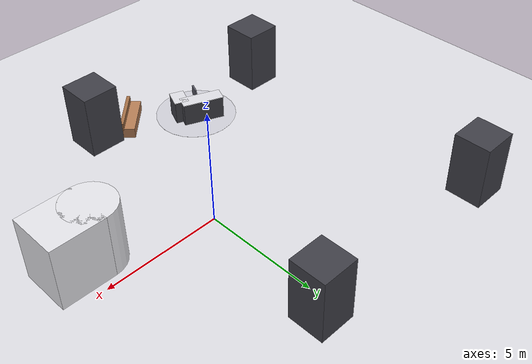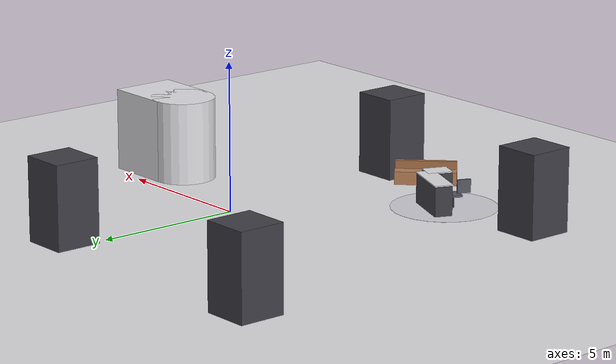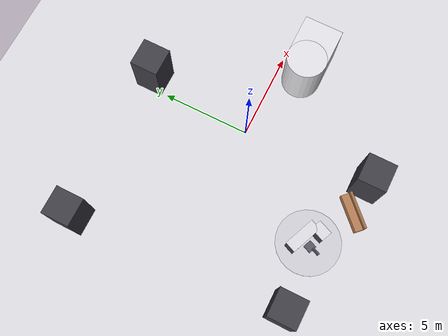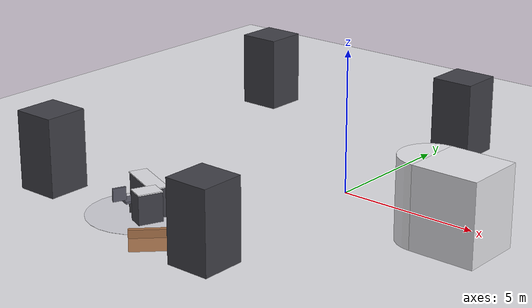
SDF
<sdf version="1.8">
 <world name="restaurant_blueprint_world">
  <model name="ground_plane">
   <static>true</static>
   <link name="link">
    <collision name="collision">
     <geometry><plane><normal>0 0 1</normal><size>120 120</size></plane></geometry>
    </collision>
    <visual name="visual">
     <geometry><plane><normal>0 0 1</normal><size>120 120</size></plane></geometry>
     <material>
      <ambient>0.88 0.88 0.90 1</ambient>
      <diffuse>0.88 0.88 0.90 1</diffuse>
      <specular>0.1 0.1 0.1 1</specular>
     </material>
    </visual>
   </link>
  </model>
  <model name="restaurant_boundary">
   <static>true</static>
   <link name="rooms_06_07">
    <visual name="room_07_block_vis">
     <pose>5.470 -1.420 1.40 0 0 0</pose>
     <geometry><box><size>2.27 2.18 2.80</size></box></geometry>
     <material><ambient>0.88 0.88 0.90 1</ambient><diffuse>0.90 0.90 0.92 1</diffuse></material>
    </visual>
    <collision name="room_07_block_col">
     <pose>5.470 -1.420 1.40 0 0 0</pose>
     <geometry><box><size>2.27 2.18 2.80</size></box></geometry>
    </collision>
    <visual name="room_06_cylinder_vis">
     <pose>4.335 -1.420 1.40 0 0 0</pose>
     <geometry><cylinder><radius>1.09</radius><length>2.80</length></cylinder></geometry>
     <material><ambient>0.88 0.88 0.90 1</ambient><diffuse>0.90 0.90 0.92 1</diffuse></material>
    </visual>
    <collision name="room_06_cylinder_col">
     <pose>4.335 -1.420 1.40 0 0 0</pose>
     <geometry><cylinder><radius>1.09</radius><length>2.80</length></cylinder></geometry>
    </collision>
   </link>
   <link name="structural_pillars">
    <visual name="pillar_nw_vis">
     <pose>-8.445 6.110 1.40 0 0 0</pose>
     <geometry><box><size>1.56 1.56 2.80</size></box></geometry>
     <material><ambient>0.25 0.25 0.28 1</ambient><diffuse>0.25 0.25 0.28 1</diffuse></material>
    </visual>
    <collision name="pillar_nw_col">
     <pose>-8.445 6.110 1.40 0 0 0</pose>
     <geometry><box><size>1.56 1.56 2.80</size></box></geometry>
    </collision>
    <visual name="pillar_ne_vis">
     <pose>0.650 6.110 1.40 0 0 0</pose>
     <geometry><box><size>1.56 1.56 2.80</size></box></geometry>
     <material><ambient>0.25 0.25 0.28 1</ambient><diffuse>0.25 0.25 0.28 1</diffuse></material>
    </visual>
    <collision name="pillar_ne_col">
     <pose>0.650 6.110 1.40 0 0 0</pose>
     <geometry><box><size>1.56 1.56 2.80</size></box></geometry>
    </collision>
    <visual name="pillar_sw_vis">
     <pose>-7.878 -6.025 1.40 0 0 0</pose>
     <geometry><box><size>1.56 1.56 2.80</size></box></geometry>
     <material><ambient>0.25 0.25 0.28 1</ambient><diffuse>0.25 0.25 0.28 1</diffuse></material>
    </visual>
    <collision name="pillar_sw_col">
     <pose>-7.878 -6.025 1.40 0 0 0</pose>
     <geometry><box><size>1.56 1.56 2.80</size></box></geometry>
    </collision>
    <visual name="pillar_se_vis">
     <pose>0.225 -7.230 1.40 0 0 0</pose>
     <geometry><box><size>1.56 1.56 2.80</size></box></geometry>
     <material><ambient>0.25 0.25 0.28 1</ambient><diffuse>0.25 0.25 0.28 1</diffuse></material>
    </visual>
    <collision name="pillar_se_col">
     <pose>0.225 -7.230 1.40 0 0 0</pose>
     <geometry><box><size>1.56 1.56 2.80</size></box></geometry>
    </collision>
   </link>
   <link name="main_entrance_furniture">
    <visual name="waiting_bench_seat_vis">
     <pose>-1.550 -7.201 0.225 0 0 0.7854</pose>
     <geometry><box><size>2.10 0.60 0.45</size></box></geometry>
     <material><ambient>0.62 0.42 0.28 1</ambient><diffuse>0.72 0.50 0.34 1</diffuse></material>
    </visual>
    <collision name="waiting_bench_seat_col">
     <pose>-1.550 -7.201 0.225 0 0 0.7854</pose>
     <geometry><box><size>2.10 0.60 0.45</size></box></geometry>
    </collision>
    <visual name="waiting_bench_backrest_vis">
     <pose>-1.391 -7.360 0.550 0 0 0.7854</pose>
     <geometry><box><size>2.10 0.15 0.35</size></box></geometry>
     <material><ambient>0.55 0.36 0.24 1</ambient><diffuse>0.65 0.44 0.28 1</diffuse></material>
    </visual>
    <collision name="waiting_bench_backrest_col">
     <pose>-1.391 -7.360 0.550 0 0 0.7854</pose>
     <geometry><box><size>2.10 0.15 0.35</size></box></geometry>
    </collision>
    <visual name="reception_floor_disc_vis">
     <pose>-4.051 -5.750 0.003 0 0 0</pose>
     <geometry><cylinder><radius>1.80</radius><length>0.004</length></cylinder></geometry>
     <material><ambient>0.82 0.82 0.85 1</ambient><diffuse>0.82 0.82 0.85 1</diffuse></material>
    </visual>
    <visual name="reception_counter_body_vis">
     <pose>-4.051 -5.297 0.510 0 0 2.7489</pose>
     <geometry><box><size>1.80 0.60 1.02</size></box></geometry>
     <material><ambient>0.25 0.25 0.28 1</ambient><diffuse>0.25 0.25 0.28 1</diffuse></material>
    </visual>
    <visual name="reception_counter_top_vis">
     <pose>-4.051 -5.297 1.035 0 0 2.7489</pose>
     <geometry><box><size>1.84 0.64 0.04</size></box></geometry>
     <material><ambient>0.88 0.88 0.90 1</ambient><diffuse>0.88 0.88 0.90 1</diffuse></material>
    </visual>
    <collision name="reception_counter_col">
     <pose>-4.051 -5.297 0.525 0 0 2.7489</pose>
     <geometry><box><size>1.80 0.60 1.05</size></box></geometry>
    </collision>
    <visual name="reception_return_body_vis">
     <pose>-3.382 -6.034 0.510 0 0 1.1781</pose>
     <geometry><box><size>0.85 0.60 1.02</size></box></geometry>
     <material><ambient>0.25 0.25 0.28 1</ambient><diffuse>0.25 0.25 0.28 1</diffuse></material>
    </visual>
    <visual name="reception_return_top_vis">
     <pose>-3.382 -6.034 1.035 0 0 1.1781</pose>
     <geometry><box><size>0.85 0.64 0.04</size></box></geometry>
     <material><ambient>0.88 0.88 0.90 1</ambient><diffuse>0.88 0.88 0.90 1</diffuse></material>
    </visual>
    <collision name="reception_return_col">
     <pose>-3.382 -6.034 0.525 0 0 1.1781</pose>
     <geometry><box><size>0.85 0.60 1.05</size></box></geometry>
    </collision>
    <visual name="reception_chair_base_vis">
     <pose>-4.300 -5.898 0.200 0 0 1.1781</pose>
     <geometry><cylinder><radius>0.04</radius><length>0.40</length></cylinder></geometry>
     <material><ambient>0.20 0.20 0.22 1</ambient><diffuse>0.20 0.20 0.22 1</diffuse></material>
    </visual>
    <visual name="reception_chair_seat_vis">
     <pose>-4.300 -5.898 0.440 0 0 1.1781</pose>
     <geometry><box><size>0.48 0.48 0.08</size></box></geometry>
     <material><ambient>0.30 0.30 0.35 1</ambient><diffuse>0.35 0.35 0.40 1</diffuse></material>
    </visual>
    <visual name="reception_chair_back_vis">
     <pose>-4.444 -6.245 0.700 0 0 1.1781</pose>
     <geometry><box><size>0.46 0.08 0.46</size></box></geometry>
     <material><ambient>0.30 0.30 0.35 1</ambient><diffuse>0.35 0.35 0.40 1</diffuse></material>
    </visual>
    <collision name="reception_chair_col">
     <pose>-4.300 -5.898 0.475 0 0 1.1781</pose>
     <geometry><cylinder><radius>0.28</radius><length>0.95</length></cylinder></geometry>
    </collision>
   </link>
  </model>
 </world>
</sdf>
